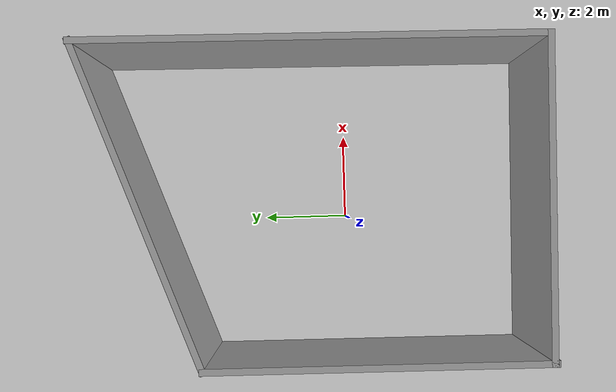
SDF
<sdf version="1.7">
 <world name="default">
  <light name="sun" type="directional">
   <pose>0 0 10 0 -0 0</pose>
   <diffuse>0.8 0.8 0.8 1</diffuse>
   <specular>0.2 0.2 0.2 1</specular>
   <attenuation>
    <range>1000</range>
    <constant>0.9</constant>
    <linear>0.01</linear>
    <quadratic>0.001</quadratic>
   </attenuation>
   <direction>-0.5 0.1 -0.9</direction>
   <spot><inner_angle>0</inner_angle><outer_angle>0</outer_angle><falloff>0</falloff></spot>
  </light>
  <model name="ground_plane">
   <static>1</static>
   <link name="link">
    <collision name="collision">
     <geometry><plane><normal>0 0 1</normal><size>100 100</size></plane></geometry>
     <surface>
      <contact><collide_bitmask>65535</collide_bitmask></contact>
      <friction><ode><mu>100</mu><mu2>50</mu2></ode></friction>
     </surface>
    </collision>
    <visual name="visual">
     <cast_shadows>0</cast_shadows>
     <geometry><plane><normal>0 0 1</normal><size>100 100</size></plane></geometry>
     <material>
      <script><uri>file://media/materials/scripts/gazebo.material</uri><name>Gazebo/Grey</name></script>
     </material>
    </visual>
   </link>
  </model>
  <gravity>0 0 -9.8</gravity>
  <magnetic_field>6e-06 2.3e-05 -4.2e-05</magnetic_field>
  <atmosphere type="adiabatic"/>
  <physics type="ode">
   <max_step_size>0.001</max_step_size>
   <real_time_factor>1</real_time_factor>
   <real_time_update_rate>1000</real_time_update_rate>
  </physics>
  <scene><ambient>0.4 0.4 0.4 1</ambient><background>0.7 0.7 0.7 1</background><shadows>1</shadows></scene>
  <spherical_coordinates>
   <surface_model>EARTH_WGS84</surface_model>
   <latitude_deg>0</latitude_deg>
   <longitude_deg>0</longitude_deg>
   <elevation>0</elevation>
   <heading_deg>0</heading_deg>
  </spherical_coordinates>
  <model name="pokoj">
   <pose>0.37279 0.824344 0 0 -0 0</pose>
   <link name="Wall_0">
    <collision name="Wall_0_Collision">
     <geometry><box><size>7.2432 0.15 2.5</size></box></geometry>
     <pose>0 0 1.25 0 -0 0</pose>
    </collision>
    <visual name="Wall_0_Visual">
     <pose>0 0 1.25 0 -0 0</pose>
     <geometry><box><size>7.2432 0.15 2.5</size></box></geometry>
     <material>
      <script><uri>file://media/materials/scripts/gazebo.material</uri><name>Gazebo/Grey</name></script>
      <ambient>1 1 1 1</ambient>
     </material>
     <meta><layer>0</layer></meta>
    </visual>
    <pose>-0.040456 -5.14495 0 0 -0 3.13019</pose>
   </link>
   <link name="Wall_1">
    <collision name="Wall_1_Collision">
     <geometry><box><size>0.15 0.15 2.5</size></box></geometry>
     <pose>0 0 1.25 0 -0 0</pose>
    </collision>
    <visual name="Wall_1_Visual">
     <pose>0 0 1.25 0 -0 0</pose>
     <geometry><box><size>0.15 0.15 2.5</size></box></geometry>
     <material>
      <script><uri>file://media/materials/scripts/gazebo.material</uri><name>Gazebo/Grey</name></script>
      <ambient>1 1 1 1</ambient>
     </material>
     <meta><layer>0</layer></meta>
    </visual>
    <pose>-3.58682 -5.1045 0 0 -0 0</pose>
   </link>
   <link name="Wall_2">
    <collision name="Wall_2_Collision">
     <geometry><box><size>7.75 0.15 2.5</size></box></geometry>
     <pose>0 0 1.25 0 -0 0</pose>
    </collision>
    <visual name="Wall_2_Visual">
     <pose>0 0 1.25 0 -0 0</pose>
     <geometry><box><size>7.75 0.15 2.5</size></box></geometry>
     <material>
      <script><uri>file://media/materials/scripts/gazebo.material</uri><name>Gazebo/Grey</name></script>
      <ambient>1 1 1 1</ambient>
     </material>
     <meta><layer>0</layer></meta>
    </visual>
    <pose>-3.58682 -1.34495 0 0 -0 1.5708</pose>
   </link>
   <link name="Wall_4">
    <collision name="Wall_4_Collision">
     <geometry><box><size>10.5 0.15 2.5</size></box></geometry>
     <pose>0 0 1.25 0 -0 0</pose>
    </collision>
    <visual name="Wall_4_Visual">
     <pose>0 0 1.25 0 -0 0</pose>
     <geometry><box><size>10.5 0.15 2.5</size></box></geometry>
     <material>
      <script><uri>file://media/materials/scripts/gazebo.material</uri><name>Gazebo/Grey</name></script>
      <ambient>1 1 1 1</ambient>
     </material>
     <meta><layer>0</layer></meta>
    </visual>
    <pose>3.54637 -0.010406 0 0 -0 1.56298</pose>
   </link>
   <link name="Wall_8">
    <collision name="Wall_8_Collision">
     <geometry><box><size>7.8183 0.15 2.5</size></box></geometry>
     <pose>0 0 1.25 0 -0 0</pose>
    </collision>
    <visual name="Wall_8_Visual">
     <pose>0 0 1.25 0 -0 0</pose>
     <geometry><box><size>7.8183 0.15 2.5</size></box></geometry>
     <material>
      <script><uri>file://media/materials/scripts/gazebo.material</uri><name>Gazebo/Grey</name></script>
      <ambient>1 1 1 1</ambient>
     </material>
     <meta><layer>0</layer></meta>
    </visual>
    <pose>-0 3.80982 0 0 -0 0.361143</pose>
   </link>
   <static>1</static>
  </model>
 </world>
</sdf>
